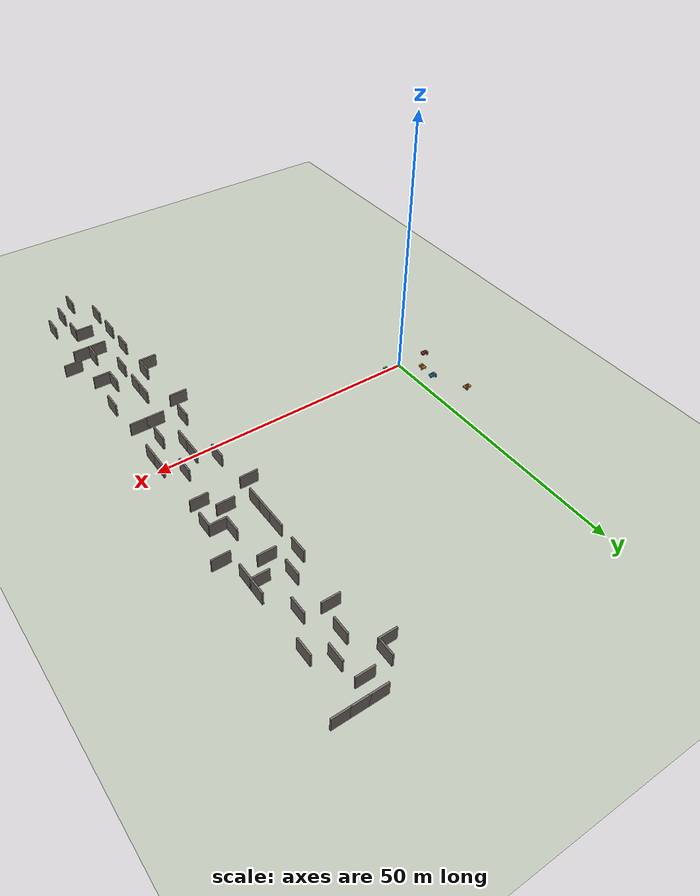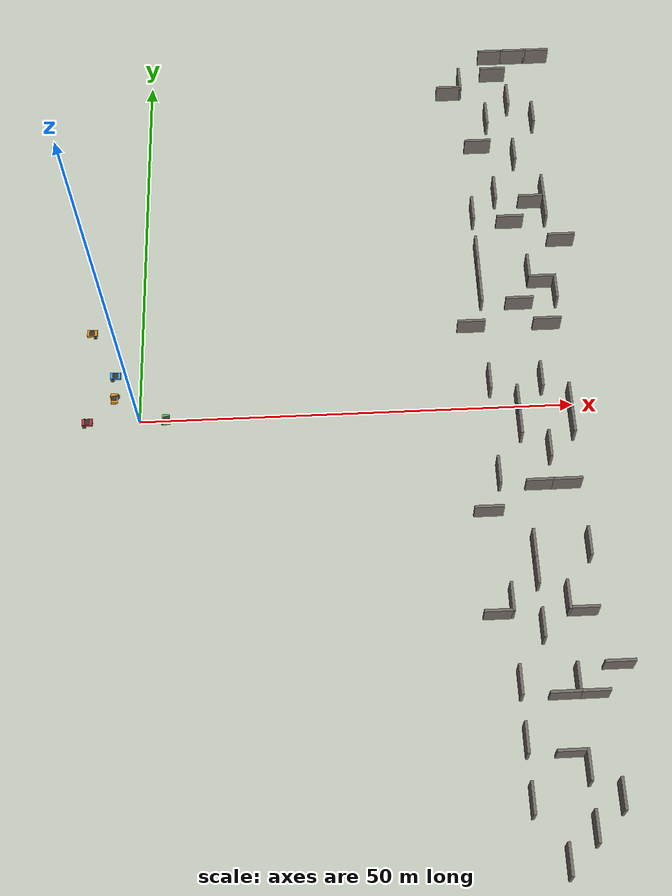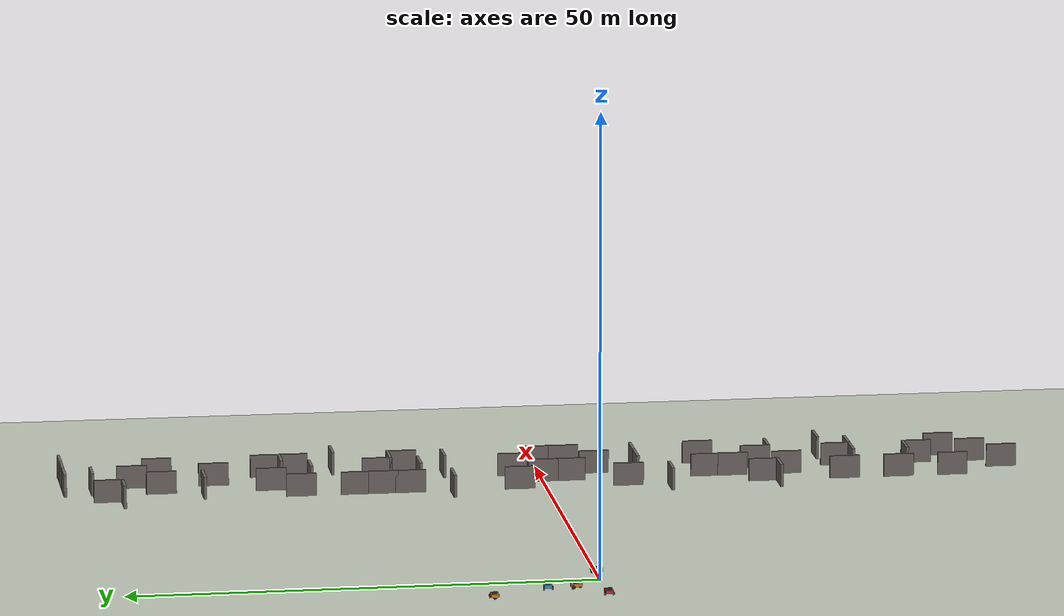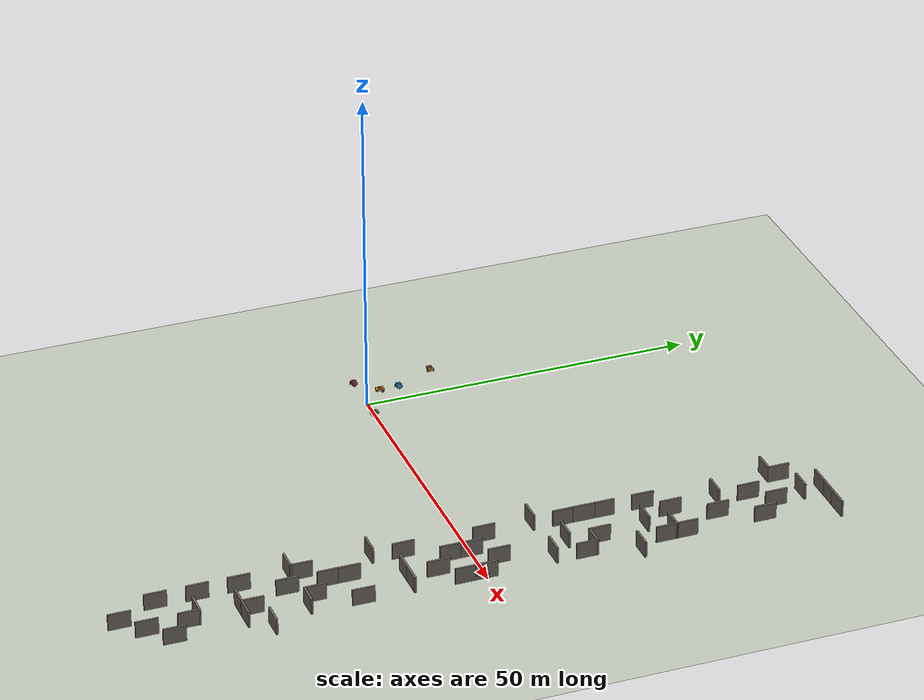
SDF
<sdf version="1.9">
 <world name="swap_world">
  <model name="ground_plane">
   <static>true</static>
   <link name="link">
    <collision name="collision">
     <geometry><plane><normal>0 0 1</normal><size>125 125</size></plane></geometry>
    </collision>
    <visual name="visual">
     <geometry><plane><normal>0 0 1</normal><size>125 125</size></plane></geometry>
     <material><ambient>0.75 0.78 0.72 1</ambient><diffuse>0.75 0.78 0.72 1</diffuse></material>
    </visual>
   </link>
  </model>
  <model name="wall_461">
   <static>true</static>
   <link name="l">
    <pose>40.50 48.00 1.25 0 0 1.5708</pose>
    <collision name="c"><geometry><box><size>3.30 0.3 2.5</size></box></geometry></collision>
    <visual name="v">
     <geometry><box><size>3.30 0.3 2.5</size></box></geometry>
     <material><ambient>0.45 0.42 0.4 1</ambient><diffuse>0.45 0.42 0.4 1</diffuse></material>
    </visual>
   </link>
  </model>
  <model name="wall_462">
   <static>true</static>
   <link name="l">
    <pose>39.00 46.50 1.25 0 0 0.0000</pose>
    <collision name="c"><geometry><box><size>3.30 0.3 2.5</size></box></geometry></collision>
    <visual name="v">
     <geometry><box><size>3.30 0.3 2.5</size></box></geometry>
     <material><ambient>0.45 0.42 0.4 1</ambient><diffuse>0.45 0.42 0.4 1</diffuse></material>
    </visual>
   </link>
  </model>
  <model name="wall_463">
   <static>true</static>
   <link name="l">
    <pose>40.50 27.00 1.25 0 0 1.5708</pose>
    <collision name="c"><geometry><box><size>3.30 0.3 2.5</size></box></geometry></collision>
    <visual name="v">
     <geometry><box><size>3.30 0.3 2.5</size></box></geometry>
     <material><ambient>0.45 0.42 0.4 1</ambient><diffuse>0.45 0.42 0.4 1</diffuse></material>
    </visual>
   </link>
  </model>
  <model name="wall_464">
   <static>true</static>
   <link name="l">
    <pose>40.50 21.00 1.25 0 0 1.5708</pose>
    <collision name="c"><geometry><box><size>3.30 0.3 2.5</size></box></geometry></collision>
    <visual name="v">
     <geometry><box><size>3.30 0.3 2.5</size></box></geometry>
     <material><ambient>0.45 0.42 0.4 1</ambient><diffuse>0.45 0.42 0.4 1</diffuse></material>
    </visual>
   </link>
  </model>
  <model name="wall_465">
   <static>true</static>
   <link name="l">
    <pose>40.50 18.00 1.25 0 0 1.5708</pose>
    <collision name="c"><geometry><box><size>3.30 0.3 2.5</size></box></geometry></collision>
    <visual name="v">
     <geometry><box><size>3.30 0.3 2.5</size></box></geometry>
     <material><ambient>0.45 0.42 0.4 1</ambient><diffuse>0.45 0.42 0.4 1</diffuse></material>
    </visual>
   </link>
  </model>
  <model name="wall_466">
   <static>true</static>
   <link name="l">
    <pose>40.50 15.00 1.25 0 0 1.5708</pose>
    <collision name="c"><geometry><box><size>3.30 0.3 2.5</size></box></geometry></collision>
    <visual name="v">
     <geometry><box><size>3.30 0.3 2.5</size></box></geometry>
     <material><ambient>0.45 0.42 0.4 1</ambient><diffuse>0.45 0.42 0.4 1</diffuse></material>
    </visual>
   </link>
  </model>
  <model name="wall_467">
   <static>true</static>
   <link name="l">
    <pose>39.00 10.50 1.25 0 0 0.0000</pose>
    <collision name="c"><geometry><box><size>3.30 0.3 2.5</size></box></geometry></collision>
    <visual name="v">
     <geometry><box><size>3.30 0.3 2.5</size></box></geometry>
     <material><ambient>0.45 0.42 0.4 1</ambient><diffuse>0.45 0.42 0.4 1</diffuse></material>
    </visual>
   </link>
  </model>
  <model name="wall_468">
   <static>true</static>
   <link name="l">
    <pose>40.50 3.00 1.25 0 0 1.5708</pose>
    <collision name="c"><geometry><box><size>3.30 0.3 2.5</size></box></geometry></collision>
    <visual name="v">
     <geometry><box><size>3.30 0.3 2.5</size></box></geometry>
     <material><ambient>0.45 0.42 0.4 1</ambient><diffuse>0.45 0.42 0.4 1</diffuse></material>
    </visual>
   </link>
  </model>
  <model name="wall_469">
   <static>true</static>
   <link name="l">
    <pose>40.50 -9.00 1.25 0 0 1.5708</pose>
    <collision name="c"><geometry><box><size>3.30 0.3 2.5</size></box></geometry></collision>
    <visual name="v">
     <geometry><box><size>3.30 0.3 2.5</size></box></geometry>
     <material><ambient>0.45 0.42 0.4 1</ambient><diffuse>0.45 0.42 0.4 1</diffuse></material>
    </visual>
   </link>
  </model>
  <model name="wall_470">
   <static>true</static>
   <link name="l">
    <pose>39.00 -13.50 1.25 0 0 0.0000</pose>
    <collision name="c"><geometry><box><size>3.30 0.3 2.5</size></box></geometry></collision>
    <visual name="v">
     <geometry><box><size>3.30 0.3 2.5</size></box></geometry>
     <material><ambient>0.45 0.42 0.4 1</ambient><diffuse>0.45 0.42 0.4 1</diffuse></material>
    </visual>
   </link>
  </model>
  <model name="wall_471">
   <static>true</static>
   <link name="l">
    <pose>40.50 -24.00 1.25 0 0 1.5708</pose>
    <collision name="c"><geometry><box><size>3.30 0.3 2.5</size></box></geometry></collision>
    <visual name="v">
     <geometry><box><size>3.30 0.3 2.5</size></box></geometry>
     <material><ambient>0.45 0.42 0.4 1</ambient><diffuse>0.45 0.42 0.4 1</diffuse></material>
    </visual>
   </link>
  </model>
  <model name="wall_472">
   <static>true</static>
   <link name="l">
    <pose>39.00 -25.50 1.25 0 0 0.0000</pose>
    <collision name="c"><geometry><box><size>3.30 0.3 2.5</size></box></geometry></collision>
    <visual name="v">
     <geometry><box><size>3.30 0.3 2.5</size></box></geometry>
     <material><ambient>0.45 0.42 0.4 1</ambient><diffuse>0.45 0.42 0.4 1</diffuse></material>
    </visual>
   </link>
  </model>
  <model name="wall_473">
   <static>true</static>
   <link name="l">
    <pose>40.50 -33.00 1.25 0 0 1.5708</pose>
    <collision name="c"><geometry><box><size>3.30 0.3 2.5</size></box></geometry></collision>
    <visual name="v">
     <geometry><box><size>3.30 0.3 2.5</size></box></geometry>
     <material><ambient>0.45 0.42 0.4 1</ambient><diffuse>0.45 0.42 0.4 1</diffuse></material>
    </visual>
   </link>
  </model>
  <model name="wall_474">
   <static>true</static>
   <link name="l">
    <pose>40.50 -39.00 1.25 0 0 1.5708</pose>
    <collision name="c"><geometry><box><size>3.30 0.3 2.5</size></box></geometry></collision>
    <visual name="v">
     <geometry><box><size>3.30 0.3 2.5</size></box></geometry>
     <material><ambient>0.45 0.42 0.4 1</ambient><diffuse>0.45 0.42 0.4 1</diffuse></material>
    </visual>
   </link>
  </model>
  <model name="wall_475">
   <static>true</static>
   <link name="l">
    <pose>40.50 -45.00 1.25 0 0 1.5708</pose>
    <collision name="c"><geometry><box><size>3.30 0.3 2.5</size></box></geometry></collision>
    <visual name="v">
     <geometry><box><size>3.30 0.3 2.5</size></box></geometry>
     <material><ambient>0.45 0.42 0.4 1</ambient><diffuse>0.45 0.42 0.4 1</diffuse></material>
    </visual>
   </link>
  </model>
  <model name="wall_476">
   <static>true</static>
   <link name="l">
    <pose>43.50 42.00 1.25 0 0 1.5708</pose>
    <collision name="c"><geometry><box><size>3.30 0.3 2.5</size></box></geometry></collision>
    <visual name="v">
     <geometry><box><size>3.30 0.3 2.5</size></box></geometry>
     <material><ambient>0.45 0.42 0.4 1</ambient><diffuse>0.45 0.42 0.4 1</diffuse></material>
    </visual>
   </link>
  </model>
  <model name="wall_477">
   <static>true</static>
   <link name="l">
    <pose>42.00 37.50 1.25 0 0 0.0000</pose>
    <collision name="c"><geometry><box><size>3.30 0.3 2.5</size></box></geometry></collision>
    <visual name="v">
     <geometry><box><size>3.30 0.3 2.5</size></box></geometry>
     <material><ambient>0.45 0.42 0.4 1</ambient><diffuse>0.45 0.42 0.4 1</diffuse></material>
    </visual>
   </link>
  </model>
  <model name="wall_478">
   <static>true</static>
   <link name="l">
    <pose>43.50 30.00 1.25 0 0 1.5708</pose>
    <collision name="c"><geometry><box><size>3.30 0.3 2.5</size></box></geometry></collision>
    <visual name="v">
     <geometry><box><size>3.30 0.3 2.5</size></box></geometry>
     <material><ambient>0.45 0.42 0.4 1</ambient><diffuse>0.45 0.42 0.4 1</diffuse></material>
    </visual>
   </link>
  </model>
  <model name="wall_479">
   <static>true</static>
   <link name="l">
    <pose>43.50 -0.00 1.25 0 0 1.5708</pose>
    <collision name="c"><geometry><box><size>3.30 0.3 2.5</size></box></geometry></collision>
    <visual name="v">
     <geometry><box><size>3.30 0.3 2.5</size></box></geometry>
     <material><ambient>0.45 0.42 0.4 1</ambient><diffuse>0.45 0.42 0.4 1</diffuse></material>
    </visual>
   </link>
  </model>
  <model name="wall_480">
   <static>true</static>
   <link name="l">
    <pose>43.50 -3.00 1.25 0 0 1.5708</pose>
    <collision name="c"><geometry><box><size>3.30 0.3 2.5</size></box></geometry></collision>
    <visual name="v">
     <geometry><box><size>3.30 0.3 2.5</size></box></geometry>
     <material><ambient>0.45 0.42 0.4 1</ambient><diffuse>0.45 0.42 0.4 1</diffuse></material>
    </visual>
   </link>
  </model>
  <model name="wall_481">
   <static>true</static>
   <link name="l">
    <pose>43.50 -18.00 1.25 0 0 1.5708</pose>
    <collision name="c"><geometry><box><size>3.30 0.3 2.5</size></box></geometry></collision>
    <visual name="v">
     <geometry><box><size>3.30 0.3 2.5</size></box></geometry>
     <material><ambient>0.45 0.42 0.4 1</ambient><diffuse>0.45 0.42 0.4 1</diffuse></material>
    </visual>
   </link>
  </model>
  <model name="wall_482">
   <static>true</static>
   <link name="l">
    <pose>43.50 -21.00 1.25 0 0 1.5708</pose>
    <collision name="c"><geometry><box><size>3.30 0.3 2.5</size></box></geometry></collision>
    <visual name="v">
     <geometry><box><size>3.30 0.3 2.5</size></box></geometry>
     <material><ambient>0.45 0.42 0.4 1</ambient><diffuse>0.45 0.42 0.4 1</diffuse></material>
    </visual>
   </link>
  </model>
  <model name="wall_483">
   <static>true</static>
   <link name="l">
    <pose>43.50 -27.00 1.25 0 0 1.5708</pose>
    <collision name="c"><geometry><box><size>3.30 0.3 2.5</size></box></geometry></collision>
    <visual name="v">
     <geometry><box><size>3.30 0.3 2.5</size></box></geometry>
     <material><ambient>0.45 0.42 0.4 1</ambient><diffuse>0.45 0.42 0.4 1</diffuse></material>
    </visual>
   </link>
  </model>
  <model name="wall_484">
   <static>true</static>
   <link name="l">
    <pose>43.50 -51.00 1.25 0 0 1.5708</pose>
    <collision name="c"><geometry><box><size>3.30 0.3 2.5</size></box></geometry></collision>
    <visual name="v">
     <geometry><box><size>3.30 0.3 2.5</size></box></geometry>
     <material><ambient>0.45 0.42 0.4 1</ambient><diffuse>0.45 0.42 0.4 1</diffuse></material>
    </visual>
   </link>
  </model>
  <model name="wall_485">
   <static>true</static>
   <link name="l">
    <pose>45.00 52.50 1.25 0 0 0.0000</pose>
    <collision name="c"><geometry><box><size>3.30 0.3 2.5</size></box></geometry></collision>
    <visual name="v">
     <geometry><box><size>3.30 0.3 2.5</size></box></geometry>
     <material><ambient>0.45 0.42 0.4 1</ambient><diffuse>0.45 0.42 0.4 1</diffuse></material>
    </visual>
   </link>
  </model>
  <model name="wall_486">
   <static>true</static>
   <link name="l">
    <pose>45.00 49.50 1.25 0 0 0.0000</pose>
    <collision name="c"><geometry><box><size>3.30 0.3 2.5</size></box></geometry></collision>
    <visual name="v">
     <geometry><box><size>3.30 0.3 2.5</size></box></geometry>
     <material><ambient>0.45 0.42 0.4 1</ambient><diffuse>0.45 0.42 0.4 1</diffuse></material>
    </visual>
   </link>
  </model>
  <model name="wall_487">
   <static>true</static>
   <link name="l">
    <pose>46.50 45.00 1.25 0 0 1.5708</pose>
    <collision name="c"><geometry><box><size>3.30 0.3 2.5</size></box></geometry></collision>
    <visual name="v">
     <geometry><box><size>3.30 0.3 2.5</size></box></geometry>
     <material><ambient>0.45 0.42 0.4 1</ambient><diffuse>0.45 0.42 0.4 1</diffuse></material>
    </visual>
   </link>
  </model>
  <model name="wall_488">
   <static>true</static>
   <link name="l">
    <pose>46.50 36.00 1.25 0 0 1.5708</pose>
    <collision name="c"><geometry><box><size>3.30 0.3 2.5</size></box></geometry></collision>
    <visual name="v">
     <geometry><box><size>3.30 0.3 2.5</size></box></geometry>
     <material><ambient>0.45 0.42 0.4 1</ambient><diffuse>0.45 0.42 0.4 1</diffuse></material>
    </visual>
   </link>
  </model>
  <model name="wall_489">
   <static>true</static>
   <link name="l">
    <pose>45.00 25.50 1.25 0 0 0.0000</pose>
    <collision name="c"><geometry><box><size>3.30 0.3 2.5</size></box></geometry></collision>
    <visual name="v">
     <geometry><box><size>3.30 0.3 2.5</size></box></geometry>
     <material><ambient>0.45 0.42 0.4 1</ambient><diffuse>0.45 0.42 0.4 1</diffuse></material>
    </visual>
   </link>
  </model>
  <model name="wall_490">
   <static>true</static>
   <link name="l">
    <pose>46.50 18.00 1.25 0 0 1.5708</pose>
    <collision name="c"><geometry><box><size>3.30 0.3 2.5</size></box></geometry></collision>
    <visual name="v">
     <geometry><box><size>3.30 0.3 2.5</size></box></geometry>
     <material><ambient>0.45 0.42 0.4 1</ambient><diffuse>0.45 0.42 0.4 1</diffuse></material>
    </visual>
   </link>
  </model>
  <model name="wall_491">
   <static>true</static>
   <link name="l">
    <pose>45.00 13.50 1.25 0 0 0.0000</pose>
    <collision name="c"><geometry><box><size>3.30 0.3 2.5</size></box></geometry></collision>
    <visual name="v">
     <geometry><box><size>3.30 0.3 2.5</size></box></geometry>
     <material><ambient>0.45 0.42 0.4 1</ambient><diffuse>0.45 0.42 0.4 1</diffuse></material>
    </visual>
   </link>
  </model>
  <model name="wall_492">
   <static>true</static>
   <link name="l">
    <pose>46.50 3.00 1.25 0 0 1.5708</pose>
    <collision name="c"><geometry><box><size>3.30 0.3 2.5</size></box></geometry></collision>
    <visual name="v">
     <geometry><box><size>3.30 0.3 2.5</size></box></geometry>
     <material><ambient>0.45 0.42 0.4 1</ambient><diffuse>0.45 0.42 0.4 1</diffuse></material>
    </visual>
   </link>
  </model>
  <model name="wall_493">
   <static>true</static>
   <link name="l">
    <pose>46.50 -6.00 1.25 0 0 1.5708</pose>
    <collision name="c"><geometry><box><size>3.30 0.3 2.5</size></box></geometry></collision>
    <visual name="v">
     <geometry><box><size>3.30 0.3 2.5</size></box></geometry>
     <material><ambient>0.45 0.42 0.4 1</ambient><diffuse>0.45 0.42 0.4 1</diffuse></material>
    </visual>
   </link>
  </model>
  <model name="wall_494">
   <static>true</static>
   <link name="l">
    <pose>45.00 -10.50 1.25 0 0 0.0000</pose>
    <collision name="c"><geometry><box><size>3.30 0.3 2.5</size></box></geometry></collision>
    <visual name="v">
     <geometry><box><size>3.30 0.3 2.5</size></box></geometry>
     <material><ambient>0.45 0.42 0.4 1</ambient><diffuse>0.45 0.42 0.4 1</diffuse></material>
    </visual>
   </link>
  </model>
  <model name="wall_495">
   <static>true</static>
   <link name="l">
    <pose>46.50 -24.00 1.25 0 0 1.5708</pose>
    <collision name="c"><geometry><box><size>3.30 0.3 2.5</size></box></geometry></collision>
    <visual name="v">
     <geometry><box><size>3.30 0.3 2.5</size></box></geometry>
     <material><ambient>0.45 0.42 0.4 1</ambient><diffuse>0.45 0.42 0.4 1</diffuse></material>
    </visual>
   </link>
  </model>
  <model name="wall_496">
   <static>true</static>
   <link name="l">
    <pose>46.50 -33.00 1.25 0 0 1.5708</pose>
    <collision name="c"><geometry><box><size>3.30 0.3 2.5</size></box></geometry></collision>
    <visual name="v">
     <geometry><box><size>3.30 0.3 2.5</size></box></geometry>
     <material><ambient>0.45 0.42 0.4 1</ambient><diffuse>0.45 0.42 0.4 1</diffuse></material>
    </visual>
   </link>
  </model>
  <model name="wall_497">
   <static>true</static>
   <link name="l">
    <pose>45.00 -34.50 1.25 0 0 0.0000</pose>
    <collision name="c"><geometry><box><size>3.30 0.3 2.5</size></box></geometry></collision>
    <visual name="v">
     <geometry><box><size>3.30 0.3 2.5</size></box></geometry>
     <material><ambient>0.45 0.42 0.4 1</ambient><diffuse>0.45 0.42 0.4 1</diffuse></material>
    </visual>
   </link>
  </model>
  <model name="wall_498">
   <static>true</static>
   <link name="l">
    <pose>46.50 -42.00 1.25 0 0 1.5708</pose>
    <collision name="c"><geometry><box><size>3.30 0.3 2.5</size></box></geometry></collision>
    <visual name="v">
     <geometry><box><size>3.30 0.3 2.5</size></box></geometry>
     <material><ambient>0.45 0.42 0.4 1</ambient><diffuse>0.45 0.42 0.4 1</diffuse></material>
    </visual>
   </link>
  </model>
  <model name="wall_499">
   <static>true</static>
   <link name="l">
    <pose>45.00 -40.50 1.25 0 0 0.0000</pose>
    <collision name="c"><geometry><box><size>3.30 0.3 2.5</size></box></geometry></collision>
    <visual name="v">
     <geometry><box><size>3.30 0.3 2.5</size></box></geometry>
     <material><ambient>0.45 0.42 0.4 1</ambient><diffuse>0.45 0.42 0.4 1</diffuse></material>
    </visual>
   </link>
  </model>
  <model name="wall_500">
   <static>true</static>
   <link name="l">
    <pose>46.50 -48.00 1.25 0 0 1.5708</pose>
    <collision name="c"><geometry><box><size>3.30 0.3 2.5</size></box></geometry></collision>
    <visual name="v">
     <geometry><box><size>3.30 0.3 2.5</size></box></geometry>
     <material><ambient>0.45 0.42 0.4 1</ambient><diffuse>0.45 0.42 0.4 1</diffuse></material>
    </visual>
   </link>
  </model>
  <model name="wall_501">
   <static>true</static>
   <link name="l">
    <pose>48.00 52.50 1.25 0 0 0.0000</pose>
    <collision name="c"><geometry><box><size>3.30 0.3 2.5</size></box></geometry></collision>
    <visual name="v">
     <geometry><box><size>3.30 0.3 2.5</size></box></geometry>
     <material><ambient>0.45 0.42 0.4 1</ambient><diffuse>0.45 0.42 0.4 1</diffuse></material>
    </visual>
   </link>
  </model>
  <model name="wall_502">
   <static>true</static>
   <link name="l">
    <pose>49.50 42.00 1.25 0 0 1.5708</pose>
    <collision name="c"><geometry><box><size>3.30 0.3 2.5</size></box></geometry></collision>
    <visual name="v">
     <geometry><box><size>3.30 0.3 2.5</size></box></geometry>
     <material><ambient>0.45 0.42 0.4 1</ambient><diffuse>0.45 0.42 0.4 1</diffuse></material>
    </visual>
   </link>
  </model>
  <model name="wall_503">
   <static>true</static>
   <link name="l">
    <pose>49.50 30.00 1.25 0 0 1.5708</pose>
    <collision name="c"><geometry><box><size>3.30 0.3 2.5</size></box></geometry></collision>
    <visual name="v">
     <geometry><box><size>3.30 0.3 2.5</size></box></geometry>
     <material><ambient>0.45 0.42 0.4 1</ambient><diffuse>0.45 0.42 0.4 1</diffuse></material>
    </visual>
   </link>
  </model>
  <model name="wall_504">
   <static>true</static>
   <link name="l">
    <pose>49.50 27.00 1.25 0 0 1.5708</pose>
    <collision name="c"><geometry><box><size>3.30 0.3 2.5</size></box></geometry></collision>
    <visual name="v">
     <geometry><box><size>3.30 0.3 2.5</size></box></geometry>
     <material><ambient>0.45 0.42 0.4 1</ambient><diffuse>0.45 0.42 0.4 1</diffuse></material>
    </visual>
   </link>
  </model>
  <model name="wall_505">
   <static>true</static>
   <link name="l">
    <pose>48.00 28.50 1.25 0 0 0.0000</pose>
    <collision name="c"><geometry><box><size>3.30 0.3 2.5</size></box></geometry></collision>
    <visual name="v">
     <geometry><box><size>3.30 0.3 2.5</size></box></geometry>
     <material><ambient>0.45 0.42 0.4 1</ambient><diffuse>0.45 0.42 0.4 1</diffuse></material>
    </visual>
   </link>
  </model>
  <model name="wall_506">
   <static>true</static>
   <link name="l">
    <pose>49.50 15.00 1.25 0 0 1.5708</pose>
    <collision name="c"><geometry><box><size>3.30 0.3 2.5</size></box></geometry></collision>
    <visual name="v">
     <geometry><box><size>3.30 0.3 2.5</size></box></geometry>
     <material><ambient>0.45 0.42 0.4 1</ambient><diffuse>0.45 0.42 0.4 1</diffuse></material>
    </visual>
   </link>
  </model>
  <model name="wall_507">
   <static>true</static>
   <link name="l">
    <pose>48.00 16.50 1.25 0 0 0.0000</pose>
    <collision name="c"><geometry><box><size>3.30 0.3 2.5</size></box></geometry></collision>
    <visual name="v">
     <geometry><box><size>3.30 0.3 2.5</size></box></geometry>
     <material><ambient>0.45 0.42 0.4 1</ambient><diffuse>0.45 0.42 0.4 1</diffuse></material>
    </visual>
   </link>
  </model>
  <model name="wall_508">
   <static>true</static>
   <link name="l">
    <pose>48.00 10.50 1.25 0 0 0.0000</pose>
    <collision name="c"><geometry><box><size>3.30 0.3 2.5</size></box></geometry></collision>
    <visual name="v">
     <geometry><box><size>3.30 0.3 2.5</size></box></geometry>
     <material><ambient>0.45 0.42 0.4 1</ambient><diffuse>0.45 0.42 0.4 1</diffuse></material>
    </visual>
   </link>
  </model>
  <model name="wall_509">
   <static>true</static>
   <link name="l">
    <pose>49.50 -0.00 1.25 0 0 1.5708</pose>
    <collision name="c"><geometry><box><size>3.30 0.3 2.5</size></box></geometry></collision>
    <visual name="v">
     <geometry><box><size>3.30 0.3 2.5</size></box></geometry>
     <material><ambient>0.45 0.42 0.4 1</ambient><diffuse>0.45 0.42 0.4 1</diffuse></material>
    </visual>
   </link>
  </model>
  <model name="wall_510">
   <static>true</static>
   <link name="l">
    <pose>49.50 -3.00 1.25 0 0 1.5708</pose>
    <collision name="c"><geometry><box><size>3.30 0.3 2.5</size></box></geometry></collision>
    <visual name="v">
     <geometry><box><size>3.30 0.3 2.5</size></box></geometry>
     <material><ambient>0.45 0.42 0.4 1</ambient><diffuse>0.45 0.42 0.4 1</diffuse></material>
    </visual>
   </link>
  </model>
  <model name="wall_511">
   <static>true</static>
   <link name="l">
    <pose>48.00 -10.50 1.25 0 0 0.0000</pose>
    <collision name="c"><geometry><box><size>3.30 0.3 2.5</size></box></geometry></collision>
    <visual name="v">
     <geometry><box><size>3.30 0.3 2.5</size></box></geometry>
     <material><ambient>0.45 0.42 0.4 1</ambient><diffuse>0.45 0.42 0.4 1</diffuse></material>
    </visual>
   </link>
  </model>
  <model name="wall_512">
   <static>true</static>
   <link name="l">
    <pose>49.50 -18.00 1.25 0 0 1.5708</pose>
    <collision name="c"><geometry><box><size>3.30 0.3 2.5</size></box></geometry></collision>
    <visual name="v">
     <geometry><box><size>3.30 0.3 2.5</size></box></geometry>
     <material><ambient>0.45 0.42 0.4 1</ambient><diffuse>0.45 0.42 0.4 1</diffuse></material>
    </visual>
   </link>
  </model>
  <model name="wall_513">
   <static>true</static>
   <link name="l">
    <pose>48.00 -25.50 1.25 0 0 0.0000</pose>
    <collision name="c"><geometry><box><size>3.30 0.3 2.5</size></box></geometry></collision>
    <visual name="v">
     <geometry><box><size>3.30 0.3 2.5</size></box></geometry>
     <material><ambient>0.45 0.42 0.4 1</ambient><diffuse>0.45 0.42 0.4 1</diffuse></material>
    </visual>
   </link>
  </model>
  <model name="wall_514">
   <static>true</static>
   <link name="l">
    <pose>48.00 -34.50 1.25 0 0 0.0000</pose>
    <collision name="c"><geometry><box><size>3.30 0.3 2.5</size></box></geometry></collision>
    <visual name="v">
     <geometry><box><size>3.30 0.3 2.5</size></box></geometry>
     <material><ambient>0.45 0.42 0.4 1</ambient><diffuse>0.45 0.42 0.4 1</diffuse></material>
    </visual>
   </link>
  </model>
  <model name="wall_515">
   <static>true</static>
   <link name="l">
    <pose>49.50 -45.00 1.25 0 0 1.5708</pose>
    <collision name="c"><geometry><box><size>3.30 0.3 2.5</size></box></geometry></collision>
    <visual name="v">
     <geometry><box><size>3.30 0.3 2.5</size></box></geometry>
     <material><ambient>0.45 0.42 0.4 1</ambient><diffuse>0.45 0.42 0.4 1</diffuse></material>
    </visual>
   </link>
  </model>
  <model name="wall_516">
   <static>true</static>
   <link name="l">
    <pose>51.00 52.50 1.25 0 0 0.0000</pose>
    <collision name="c"><geometry><box><size>3.30 0.3 2.5</size></box></geometry></collision>
    <visual name="v">
     <geometry><box><size>3.30 0.3 2.5</size></box></geometry>
     <material><ambient>0.45 0.42 0.4 1</ambient><diffuse>0.45 0.42 0.4 1</diffuse></material>
    </visual>
   </link>
  </model>
  <model name="wall_517">
   <static>true</static>
   <link name="l">
    <pose>51.00 22.50 1.25 0 0 0.0000</pose>
    <collision name="c"><geometry><box><size>3.30 0.3 2.5</size></box></geometry></collision>
    <visual name="v">
     <geometry><box><size>3.30 0.3 2.5</size></box></geometry>
     <material><ambient>0.45 0.42 0.4 1</ambient><diffuse>0.45 0.42 0.4 1</diffuse></material>
    </visual>
   </link>
  </model>
  <model name="wall_518">
   <static>true</static>
   <link name="l">
    <pose>51.00 -31.50 1.25 0 0 0.0000</pose>
    <collision name="c"><geometry><box><size>3.30 0.3 2.5</size></box></geometry></collision>
    <visual name="v">
     <geometry><box><size>3.30 0.3 2.5</size></box></geometry>
     <material><ambient>0.45 0.42 0.4 1</ambient><diffuse>0.45 0.42 0.4 1</diffuse></material>
    </visual>
   </link>
  </model>
  <model name="ugv_0">
   <pose>-3.00 3.00 0.25 0 0 1.5708</pose>
   <link name="chassis">
    <pose>0 0 0.2 0 0 0</pose>
    <inertial><mass>20</mass><inertia><ixx>0.8</ixx><iyy>1.5</iyy><izz>1.8</izz></inertia></inertial>
    <collision name="c"><geometry><box><size>1.2 0.8 0.35</size></box></geometry></collision>
    <visual name="v">
     <geometry><box><size>1.2 0.8 0.35</size></box></geometry>
     <material><ambient>0.85 0.55 0.1 1</ambient><diffuse>0.85 0.55 0.1 1</diffuse></material>
    </visual>
    <visual name="deck">
     <pose>0 0 0.19 0 0 0</pose>
     <geometry><box><size>0.6 0.6 0.03</size></box></geometry>
     <material><ambient>0.2 0.2 0.2 1</ambient><diffuse>0.2 0.2 0.2 1</diffuse></material>
    </visual>
   </link>
   <link name="left_wheel">
    <pose>0.35 0.45 0.0 -1.5708 0 0</pose>
    <inertial><mass>2</mass><inertia><ixx>0.03</ixx><iyy>0.03</iyy><izz>0.05</izz></inertia></inertial>
    <collision name="c">
     <geometry><cylinder><radius>0.22</radius><length>0.12</length></cylinder></geometry>
    </collision>
    <visual name="v">
     <geometry><cylinder><radius>0.22</radius><length>0.12</length></cylinder></geometry>
     <material><ambient>0.1 0.1 0.1 1</ambient><diffuse>0.1 0.1 0.1 1</diffuse></material>
    </visual>
   </link>
   <link name="right_wheel">
    <pose>0.35 -0.45 0.0 -1.5708 0 0</pose>
    <inertial><mass>2</mass><inertia><ixx>0.03</ixx><iyy>0.03</iyy><izz>0.05</izz></inertia></inertial>
    <collision name="c">
     <geometry><cylinder><radius>0.22</radius><length>0.12</length></cylinder></geometry>
    </collision>
    <visual name="v">
     <geometry><cylinder><radius>0.22</radius><length>0.12</length></cylinder></geometry>
     <material><ambient>0.1 0.1 0.1 1</ambient><diffuse>0.1 0.1 0.1 1</diffuse></material>
    </visual>
   </link>
   <link name="caster">
    <pose>-0.45 0 -0.05 0 0 0</pose>
    <inertial><mass>1</mass><inertia><ixx>0.01</ixx><iyy>0.01</iyy><izz>0.01</izz></inertia></inertial>
    <collision name="c">
     <geometry><sphere><radius>0.17</radius></sphere></geometry>
     <surface><friction><ode><mu>0.0</mu><mu2>0.0</mu2></ode></friction></surface>
    </collision>
    <visual name="v">
     <geometry><sphere><radius>0.17</radius></sphere></geometry>
     <material><ambient>0.3 0.3 0.3 1</ambient><diffuse>0.3 0.3 0.3 1</diffuse></material>
    </visual>
   </link>
   <joint name="left_wheel_joint" type="revolute">
    <parent>chassis</parent>
    <child>left_wheel</child>
    <axis><xyz>0 0 1</xyz></axis>
   </joint>
   <joint name="right_wheel_joint" type="revolute">
    <parent>chassis</parent>
    <child>right_wheel</child>
    <axis><xyz>0 0 1</xyz></axis>
   </joint>
   <joint name="caster_joint" type="ball"><parent>chassis</parent><child>caster</child></joint>
   <plugin filename="gz-sim-diff-drive-system" name="gz::sim::systems::DiffDrive">
    <left_joint>left_wheel_joint</left_joint>
    <right_joint>right_wheel_joint</right_joint>
    <wheel_separation>0.9</wheel_separation>
    <wheel_radius>0.22</wheel_radius>
    <topic>/model/ugv_0/cmd_vel</topic>
    <odom_topic>/model/ugv_0/wheel_odometry</odom_topic>
   </plugin>
   <plugin filename="gz-sim-odometry-publisher-system" name="gz::sim::systems::OdometryPublisher">
    <dimensions>3</dimensions>
   </plugin>
  </model>
  <model name="ugv_1">
   <pose>-3.00 6.00 0.25 0 0 3.1416</pose>
   <link name="chassis">
    <pose>0 0 0.2 0 0 0</pose>
    <inertial><mass>20</mass><inertia><ixx>0.8</ixx><iyy>1.5</iyy><izz>1.8</izz></inertia></inertial>
    <collision name="c"><geometry><box><size>1.2 0.8 0.35</size></box></geometry></collision>
    <visual name="v">
     <geometry><box><size>1.2 0.8 0.35</size></box></geometry>
     <material><ambient>0.2 0.6 0.85 1</ambient><diffuse>0.2 0.6 0.85 1</diffuse></material>
    </visual>
    <visual name="deck">
     <pose>0 0 0.19 0 0 0</pose>
     <geometry><box><size>0.6 0.6 0.03</size></box></geometry>
     <material><ambient>0.2 0.2 0.2 1</ambient><diffuse>0.2 0.2 0.2 1</diffuse></material>
    </visual>
   </link>
   <link name="left_wheel">
    <pose>0.35 0.45 0.0 -1.5708 0 0</pose>
    <inertial><mass>2</mass><inertia><ixx>0.03</ixx><iyy>0.03</iyy><izz>0.05</izz></inertia></inertial>
    <collision name="c">
     <geometry><cylinder><radius>0.22</radius><length>0.12</length></cylinder></geometry>
    </collision>
    <visual name="v">
     <geometry><cylinder><radius>0.22</radius><length>0.12</length></cylinder></geometry>
     <material><ambient>0.1 0.1 0.1 1</ambient><diffuse>0.1 0.1 0.1 1</diffuse></material>
    </visual>
   </link>
   <link name="right_wheel">
    <pose>0.35 -0.45 0.0 -1.5708 0 0</pose>
    <inertial><mass>2</mass><inertia><ixx>0.03</ixx><iyy>0.03</iyy><izz>0.05</izz></inertia></inertial>
    <collision name="c">
     <geometry><cylinder><radius>0.22</radius><length>0.12</length></cylinder></geometry>
    </collision>
    <visual name="v">
     <geometry><cylinder><radius>0.22</radius><length>0.12</length></cylinder></geometry>
     <material><ambient>0.1 0.1 0.1 1</ambient><diffuse>0.1 0.1 0.1 1</diffuse></material>
    </visual>
   </link>
   <link name="caster">
    <pose>-0.45 0 -0.05 0 0 0</pose>
    <inertial><mass>1</mass><inertia><ixx>0.01</ixx><iyy>0.01</iyy><izz>0.01</izz></inertia></inertial>
    <collision name="c">
     <geometry><sphere><radius>0.17</radius></sphere></geometry>
     <surface><friction><ode><mu>0.0</mu><mu2>0.0</mu2></ode></friction></surface>
    </collision>
    <visual name="v">
     <geometry><sphere><radius>0.17</radius></sphere></geometry>
     <material><ambient>0.3 0.3 0.3 1</ambient><diffuse>0.3 0.3 0.3 1</diffuse></material>
    </visual>
   </link>
   <joint name="left_wheel_joint" type="revolute">
    <parent>chassis</parent>
    <child>left_wheel</child>
    <axis><xyz>0 0 1</xyz></axis>
   </joint>
   <joint name="right_wheel_joint" type="revolute">
    <parent>chassis</parent>
    <child>right_wheel</child>
    <axis><xyz>0 0 1</xyz></axis>
   </joint>
   <joint name="caster_joint" type="ball"><parent>chassis</parent><child>caster</child></joint>
   <plugin filename="gz-sim-diff-drive-system" name="gz::sim::systems::DiffDrive">
    <left_joint>left_wheel_joint</left_joint>
    <right_joint>right_wheel_joint</right_joint>
    <wheel_separation>0.9</wheel_separation>
    <wheel_radius>0.22</wheel_radius>
    <topic>/model/ugv_1/cmd_vel</topic>
    <odom_topic>/model/ugv_1/wheel_odometry</odom_topic>
   </plugin>
   <plugin filename="gz-sim-odometry-publisher-system" name="gz::sim::systems::OdometryPublisher">
    <dimensions>3</dimensions>
   </plugin>
  </model>
  <model name="ugv_2">
   <pose>-6.00 -0.00 0.25 0 0 3.1416</pose>
   <link name="chassis">
    <pose>0 0 0.2 0 0 0</pose>
    <inertial><mass>20</mass><inertia><ixx>0.8</ixx><iyy>1.5</iyy><izz>1.8</izz></inertia></inertial>
    <collision name="c"><geometry><box><size>1.2 0.8 0.35</size></box></geometry></collision>
    <visual name="v">
     <geometry><box><size>1.2 0.8 0.35</size></box></geometry>
     <material><ambient>0.75 0.2 0.25 1</ambient><diffuse>0.75 0.2 0.25 1</diffuse></material>
    </visual>
    <visual name="deck">
     <pose>0 0 0.19 0 0 0</pose>
     <geometry><box><size>0.6 0.6 0.03</size></box></geometry>
     <material><ambient>0.2 0.2 0.2 1</ambient><diffuse>0.2 0.2 0.2 1</diffuse></material>
    </visual>
   </link>
   <link name="left_wheel">
    <pose>0.35 0.45 0.0 -1.5708 0 0</pose>
    <inertial><mass>2</mass><inertia><ixx>0.03</ixx><iyy>0.03</iyy><izz>0.05</izz></inertia></inertial>
    <collision name="c">
     <geometry><cylinder><radius>0.22</radius><length>0.12</length></cylinder></geometry>
    </collision>
    <visual name="v">
     <geometry><cylinder><radius>0.22</radius><length>0.12</length></cylinder></geometry>
     <material><ambient>0.1 0.1 0.1 1</ambient><diffuse>0.1 0.1 0.1 1</diffuse></material>
    </visual>
   </link>
   <link name="right_wheel">
    <pose>0.35 -0.45 0.0 -1.5708 0 0</pose>
    <inertial><mass>2</mass><inertia><ixx>0.03</ixx><iyy>0.03</iyy><izz>0.05</izz></inertia></inertial>
    <collision name="c">
     <geometry><cylinder><radius>0.22</radius><length>0.12</length></cylinder></geometry>
    </collision>
    <visual name="v">
     <geometry><cylinder><radius>0.22</radius><length>0.12</length></cylinder></geometry>
     <material><ambient>0.1 0.1 0.1 1</ambient><diffuse>0.1 0.1 0.1 1</diffuse></material>
    </visual>
   </link>
   <link name="caster">
    <pose>-0.45 0 -0.05 0 0 0</pose>
    <inertial><mass>1</mass><inertia><ixx>0.01</ixx><iyy>0.01</iyy><izz>0.01</izz></inertia></inertial>
    <collision name="c">
     <geometry><sphere><radius>0.17</radius></sphere></geometry>
     <surface><friction><ode><mu>0.0</mu><mu2>0.0</mu2></ode></friction></surface>
    </collision>
    <visual name="v">
     <geometry><sphere><radius>0.17</radius></sphere></geometry>
     <material><ambient>0.3 0.3 0.3 1</ambient><diffuse>0.3 0.3 0.3 1</diffuse></material>
    </visual>
   </link>
   <joint name="left_wheel_joint" type="revolute">
    <parent>chassis</parent>
    <child>left_wheel</child>
    <axis><xyz>0 0 1</xyz></axis>
   </joint>
   <joint name="right_wheel_joint" type="revolute">
    <parent>chassis</parent>
    <child>right_wheel</child>
    <axis><xyz>0 0 1</xyz></axis>
   </joint>
   <joint name="caster_joint" type="ball"><parent>chassis</parent><child>caster</child></joint>
   <plugin filename="gz-sim-diff-drive-system" name="gz::sim::systems::DiffDrive">
    <left_joint>left_wheel_joint</left_joint>
    <right_joint>right_wheel_joint</right_joint>
    <wheel_separation>0.9</wheel_separation>
    <wheel_radius>0.22</wheel_radius>
    <topic>/model/ugv_2/cmd_vel</topic>
    <odom_topic>/model/ugv_2/wheel_odometry</odom_topic>
   </plugin>
   <plugin filename="gz-sim-odometry-publisher-system" name="gz::sim::systems::OdometryPublisher">
    <dimensions>3</dimensions>
   </plugin>
  </model>
  <model name="ugv_3">
   <pose>3.00 -0.00 0.25 0 0 -1.5708</pose>
   <link name="chassis">
    <pose>0 0 0.2 0 0 0</pose>
    <inertial><mass>20</mass><inertia><ixx>0.8</ixx><iyy>1.5</iyy><izz>1.8</izz></inertia></inertial>
    <collision name="c"><geometry><box><size>1.2 0.8 0.35</size></box></geometry></collision>
    <visual name="v">
     <geometry><box><size>1.2 0.8 0.35</size></box></geometry>
     <material><ambient>0.3 0.7 0.35 1</ambient><diffuse>0.3 0.7 0.35 1</diffuse></material>
    </visual>
    <visual name="deck">
     <pose>0 0 0.19 0 0 0</pose>
     <geometry><box><size>0.6 0.6 0.03</size></box></geometry>
     <material><ambient>0.2 0.2 0.2 1</ambient><diffuse>0.2 0.2 0.2 1</diffuse></material>
    </visual>
   </link>
   <link name="left_wheel">
    <pose>0.35 0.45 0.0 -1.5708 0 0</pose>
    <inertial><mass>2</mass><inertia><ixx>0.03</ixx><iyy>0.03</iyy><izz>0.05</izz></inertia></inertial>
    <collision name="c">
     <geometry><cylinder><radius>0.22</radius><length>0.12</length></cylinder></geometry>
    </collision>
    <visual name="v">
     <geometry><cylinder><radius>0.22</radius><length>0.12</length></cylinder></geometry>
     <material><ambient>0.1 0.1 0.1 1</ambient><diffuse>0.1 0.1 0.1 1</diffuse></material>
    </visual>
   </link>
   <link name="right_wheel">
    <pose>0.35 -0.45 0.0 -1.5708 0 0</pose>
    <inertial><mass>2</mass><inertia><ixx>0.03</ixx><iyy>0.03</iyy><izz>0.05</izz></inertia></inertial>
    <collision name="c">
     <geometry><cylinder><radius>0.22</radius><length>0.12</length></cylinder></geometry>
    </collision>
    <visual name="v">
     <geometry><cylinder><radius>0.22</radius><length>0.12</length></cylinder></geometry>
     <material><ambient>0.1 0.1 0.1 1</ambient><diffuse>0.1 0.1 0.1 1</diffuse></material>
    </visual>
   </link>
   <link name="caster">
    <pose>-0.45 0 -0.05 0 0 0</pose>
    <inertial><mass>1</mass><inertia><ixx>0.01</ixx><iyy>0.01</iyy><izz>0.01</izz></inertia></inertial>
    <collision name="c">
     <geometry><sphere><radius>0.17</radius></sphere></geometry>
     <surface><friction><ode><mu>0.0</mu><mu2>0.0</mu2></ode></friction></surface>
    </collision>
    <visual name="v">
     <geometry><sphere><radius>0.17</radius></sphere></geometry>
     <material><ambient>0.3 0.3 0.3 1</ambient><diffuse>0.3 0.3 0.3 1</diffuse></material>
    </visual>
   </link>
   <joint name="left_wheel_joint" type="revolute">
    <parent>chassis</parent>
    <child>left_wheel</child>
    <axis><xyz>0 0 1</xyz></axis>
   </joint>
   <joint name="right_wheel_joint" type="revolute">
    <parent>chassis</parent>
    <child>right_wheel</child>
    <axis><xyz>0 0 1</xyz></axis>
   </joint>
   <joint name="caster_joint" type="ball"><parent>chassis</parent><child>caster</child></joint>
   <plugin filename="gz-sim-diff-drive-system" name="gz::sim::systems::DiffDrive">
    <left_joint>left_wheel_joint</left_joint>
    <right_joint>right_wheel_joint</right_joint>
    <wheel_separation>0.9</wheel_separation>
    <wheel_radius>0.22</wheel_radius>
    <topic>/model/ugv_3/cmd_vel</topic>
    <odom_topic>/model/ugv_3/wheel_odometry</odom_topic>
   </plugin>
   <plugin filename="gz-sim-odometry-publisher-system" name="gz::sim::systems::OdometryPublisher">
    <dimensions>3</dimensions>
   </plugin>
  </model>
  <model name="ugv_4">
   <pose>-6.00 12.00 0.25 0 0 0.0000</pose>
   <link name="chassis">
    <pose>0 0 0.2 0 0 0</pose>
    <inertial><mass>20</mass><inertia><ixx>0.8</ixx><iyy>1.5</iyy><izz>1.8</izz></inertia></inertial>
    <collision name="c"><geometry><box><size>1.2 0.8 0.35</size></box></geometry></collision>
    <visual name="v">
     <geometry><box><size>1.2 0.8 0.35</size></box></geometry>
     <material><ambient>0.85 0.55 0.1 1</ambient><diffuse>0.85 0.55 0.1 1</diffuse></material>
    </visual>
    <visual name="deck">
     <pose>0 0 0.19 0 0 0</pose>
     <geometry><box><size>0.6 0.6 0.03</size></box></geometry>
     <material><ambient>0.2 0.2 0.2 1</ambient><diffuse>0.2 0.2 0.2 1</diffuse></material>
    </visual>
   </link>
   <link name="left_wheel">
    <pose>0.35 0.45 0.0 -1.5708 0 0</pose>
    <inertial><mass>2</mass><inertia><ixx>0.03</ixx><iyy>0.03</iyy><izz>0.05</izz></inertia></inertial>
    <collision name="c">
     <geometry><cylinder><radius>0.22</radius><length>0.12</length></cylinder></geometry>
    </collision>
    <visual name="v">
     <geometry><cylinder><radius>0.22</radius><length>0.12</length></cylinder></geometry>
     <material><ambient>0.1 0.1 0.1 1</ambient><diffuse>0.1 0.1 0.1 1</diffuse></material>
    </visual>
   </link>
   <link name="right_wheel">
    <pose>0.35 -0.45 0.0 -1.5708 0 0</pose>
    <inertial><mass>2</mass><inertia><ixx>0.03</ixx><iyy>0.03</iyy><izz>0.05</izz></inertia></inertial>
    <collision name="c">
     <geometry><cylinder><radius>0.22</radius><length>0.12</length></cylinder></geometry>
    </collision>
    <visual name="v">
     <geometry><cylinder><radius>0.22</radius><length>0.12</length></cylinder></geometry>
     <material><ambient>0.1 0.1 0.1 1</ambient><diffuse>0.1 0.1 0.1 1</diffuse></material>
    </visual>
   </link>
   <link name="caster">
    <pose>-0.45 0 -0.05 0 0 0</pose>
    <inertial><mass>1</mass><inertia><ixx>0.01</ixx><iyy>0.01</iyy><izz>0.01</izz></inertia></inertial>
    <collision name="c">
     <geometry><sphere><radius>0.17</radius></sphere></geometry>
     <surface><friction><ode><mu>0.0</mu><mu2>0.0</mu2></ode></friction></surface>
    </collision>
    <visual name="v">
     <geometry><sphere><radius>0.17</radius></sphere></geometry>
     <material><ambient>0.3 0.3 0.3 1</ambient><diffuse>0.3 0.3 0.3 1</diffuse></material>
    </visual>
   </link>
   <joint name="left_wheel_joint" type="revolute">
    <parent>chassis</parent>
    <child>left_wheel</child>
    <axis><xyz>0 0 1</xyz></axis>
   </joint>
   <joint name="right_wheel_joint" type="revolute">
    <parent>chassis</parent>
    <child>right_wheel</child>
    <axis><xyz>0 0 1</xyz></axis>
   </joint>
   <joint name="caster_joint" type="ball"><parent>chassis</parent><child>caster</child></joint>
   <plugin filename="gz-sim-diff-drive-system" name="gz::sim::systems::DiffDrive">
    <left_joint>left_wheel_joint</left_joint>
    <right_joint>right_wheel_joint</right_joint>
    <wheel_separation>0.9</wheel_separation>
    <wheel_radius>0.22</wheel_radius>
    <topic>/model/ugv_4/cmd_vel</topic>
    <odom_topic>/model/ugv_4/wheel_odometry</odom_topic>
   </plugin>
   <plugin filename="gz-sim-odometry-publisher-system" name="gz::sim::systems::OdometryPublisher">
    <dimensions>3</dimensions>
   </plugin>
  </model>
 </world>
</sdf>
